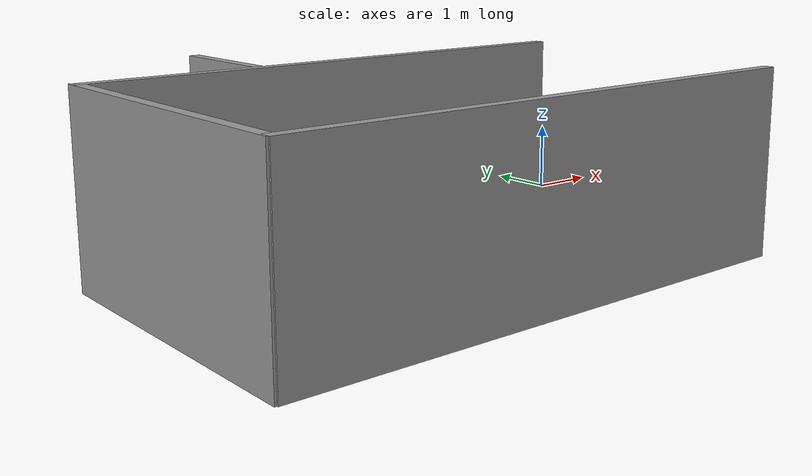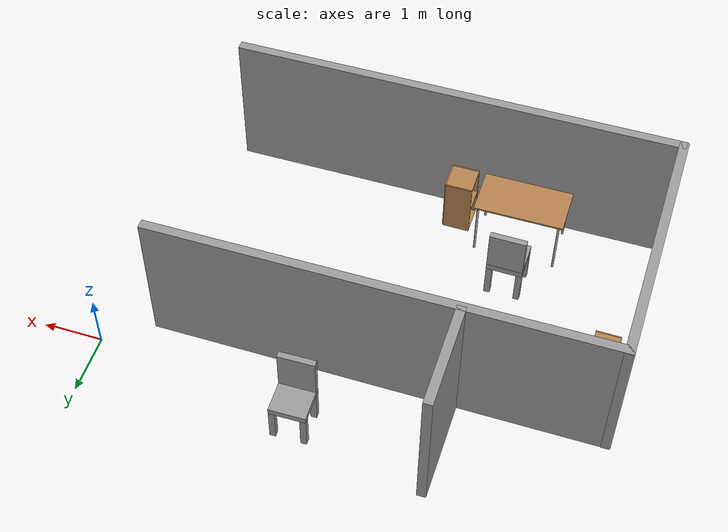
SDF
<sdf version="1.7">
 <world name="default">
  <model name="table">
   <static>1</static>
   <link name="link">
    <collision name="surface">
     <pose>0 0 1 0 -0 0</pose>
     <geometry><box><size>1.5 0.8 0.03</size></box></geometry>
     <surface><friction><ode><mu>0.6</mu><mu2>0.6</mu2></ode></friction></surface>
    </collision>
    <visual name="visual1">
     <pose>0 0 1 0 -0 0</pose>
     <geometry><box><size>1.5 0.8 0.03</size></box></geometry>
     <material>
      <script><uri>file://media/materials/scripts/gazebo.material</uri><name>Gazebo/Wood</name></script>
     </material>
    </visual>
    <collision name="front_left_leg">
     <pose>0.68 0.38 0.5 0 -0 0</pose>
     <geometry><cylinder><radius>0.02</radius><length>1</length></cylinder></geometry>
    </collision>
    <visual name="front_left_leg">
     <pose>0.68 0.38 0.5 0 -0 0</pose>
     <geometry><cylinder><radius>0.02</radius><length>1</length></cylinder></geometry>
     <material>
      <script><uri>file://media/materials/scripts/gazebo.material</uri><name>Gazebo/Grey</name></script>
     </material>
    </visual>
    <collision name="front_right_leg">
     <pose>0.68 -0.38 0.5 0 -0 0</pose>
     <geometry><cylinder><radius>0.02</radius><length>1</length></cylinder></geometry>
    </collision>
    <visual name="front_right_leg">
     <pose>0.68 -0.38 0.5 0 -0 0</pose>
     <geometry><cylinder><radius>0.02</radius><length>1</length></cylinder></geometry>
     <material>
      <script><uri>file://media/materials/scripts/gazebo.material</uri><name>Gazebo/Grey</name></script>
     </material>
    </visual>
    <collision name="back_right_leg">
     <pose>-0.68 -0.38 0.5 0 -0 0</pose>
     <geometry><cylinder><radius>0.02</radius><length>1</length></cylinder></geometry>
    </collision>
    <visual name="back_right_leg">
     <pose>-0.68 -0.38 0.5 0 -0 0</pose>
     <geometry><cylinder><radius>0.02</radius><length>1</length></cylinder></geometry>
     <material>
      <script><uri>file://media/materials/scripts/gazebo.material</uri><name>Gazebo/Grey</name></script>
     </material>
    </visual>
    <collision name="back_left_leg">
     <pose>-0.68 0.38 0.5 0 -0 0</pose>
     <geometry><cylinder><radius>0.02</radius><length>1</length></cylinder></geometry>
    </collision>
    <visual name="back_left_leg">
     <pose>-0.68 0.38 0.5 0 -0 0</pose>
     <geometry><cylinder><radius>0.02</radius><length>1</length></cylinder></geometry>
     <material>
      <script><uri>file://media/materials/scripts/gazebo.material</uri><name>Gazebo/Grey</name></script>
     </material>
    </visual>
   </link>
   <pose>-5.89991 -4.14082 0 0 -0 0</pose>
  </model>
  <model name="simple_chair">
   <link name="link_0_clone">
    <inertial>
     <mass>1</mass>
     <inertia>
      <ixx>0.166667</ixx>
      <ixy>0</ixy>
      <ixz>0</ixz>
      <iyy>0.166667</iyy>
      <iyz>0</iyz>
      <izz>0.166667</izz>
     </inertia>
    </inertial>
    <pose>-0.041667 -0 0.165833 0 -0 0</pose>
    <visual name="visual">
     <geometry><box><size>0.6 0.6 0.11</size></box></geometry>
     <material>
      <lighting>1</lighting>
      <script><uri>file://media/materials/scripts/gazebo.material</uri><name>Gazebo/Grey</name></script>
      <shader type="pixel"><normal_map>__default__</normal_map></shader>
      <ambient>0.3 0.3 0.3 1</ambient>
      <diffuse>0.7 0.7 0.7 1</diffuse>
      <specular>0.01 0.01 0.01 1</specular>
      <emissive>0 0 0 1</emissive>
     </material>
    </visual>
    <collision name="collision">
     <geometry><box><size>0.6 0.6 0.1</size></box></geometry>
     <surface>
      <friction>
       <ode><mu>1</mu><mu2>1</mu2><fdir1>0 0 0</fdir1><slip1>0</slip1><slip2>0</slip2></ode>
       <torsional>
        <coefficient>1</coefficient>
        <patch_radius>0</patch_radius>
        <surface_radius>0</surface_radius>
        <use_patch_radius>1</use_patch_radius>
        <ode><slip>0</slip></ode>
       </torsional>
      </friction>
      <bounce><restitution_coefficient>0</restitution_coefficient><threshold>1e+06</threshold></bounce>
      <contact>
       <collide_without_contact>0</collide_without_contact>
       <collide_without_contact_bitmask>1</collide_without_contact_bitmask>
       <collide_bitmask>1</collide_bitmask>
       <ode>
        <soft_cfm>0</soft_cfm>
        <soft_erp>0.2</soft_erp>
        <kp>1e+13</kp>
        <kd>1</kd>
        <max_vel>0.01</max_vel>
        <min_depth>0</min_depth>
       </ode>
       <bullet>
        <split_impulse>1</split_impulse>
        <split_impulse_penetration_threshold>-0.01</split_impulse_penetration_threshold>
        <soft_cfm>0</soft_cfm>
        <soft_erp>0.2</soft_erp>
        <kp>1e+13</kp>
        <kd>1</kd>
       </bullet>
      </contact>
     </surface>
    </collision>
   </link>
   <link name="link_1_clone">
    <inertial>
     <mass>1</mass>
     <inertia>
      <ixx>0.166667</ixx>
      <ixy>0</ixy>
      <ixz>0</ixz>
      <iyy>0.166667</iyy>
      <iyz>0</iyz>
      <izz>0.166667</izz>
     </inertia>
    </inertial>
    <pose>-0.291667 0.25 -0.184167 0 -0 0</pose>
    <visual name="visual">
     <geometry><box><size>0.1 0.1 0.6</size></box></geometry>
     <material>
      <lighting>1</lighting>
      <script><uri>file://media/materials/scripts/gazebo.material</uri><name>Gazebo/Grey</name></script>
      <shader type="pixel"><normal_map>__default__</normal_map></shader>
      <ambient>0.3 0.3 0.3 1</ambient>
      <diffuse>0.7 0.7 0.7 1</diffuse>
      <specular>0.01 0.01 0.01 1</specular>
      <emissive>0 0 0 1</emissive>
     </material>
    </visual>
    <collision name="collision">
     <geometry><box><size>0.1 0.1 0.6</size></box></geometry>
     <surface>
      <friction>
       <ode><mu>1</mu><mu2>1</mu2><fdir1>0 0 0</fdir1><slip1>0</slip1><slip2>0</slip2></ode>
       <torsional>
        <coefficient>1</coefficient>
        <patch_radius>0</patch_radius>
        <surface_radius>0</surface_radius>
        <use_patch_radius>1</use_patch_radius>
        <ode><slip>0</slip></ode>
       </torsional>
      </friction>
      <bounce><restitution_coefficient>0</restitution_coefficient><threshold>1e+06</threshold></bounce>
      <contact>
       <collide_without_contact>0</collide_without_contact>
       <collide_without_contact_bitmask>1</collide_without_contact_bitmask>
       <collide_bitmask>1</collide_bitmask>
       <ode>
        <soft_cfm>0</soft_cfm>
        <soft_erp>0.2</soft_erp>
        <kp>1e+13</kp>
        <kd>1</kd>
        <max_vel>0.01</max_vel>
        <min_depth>0</min_depth>
       </ode>
       <bullet>
        <split_impulse>1</split_impulse>
        <split_impulse_penetration_threshold>-0.01</split_impulse_penetration_threshold>
        <soft_cfm>0</soft_cfm>
        <soft_erp>0.2</soft_erp>
        <kp>1e+13</kp>
        <kd>1</kd>
       </bullet>
      </contact>
     </surface>
    </collision>
   </link>
   <link name="link_1_clone_0">
    <inertial>
     <mass>1</mass>
     <inertia>
      <ixx>0.166667</ixx>
      <ixy>0</ixy>
      <ixz>0</ixz>
      <iyy>0.166667</iyy>
      <iyz>0</iyz>
      <izz>0.166667</izz>
     </inertia>
    </inertial>
    <pose>0.208333 0.25 -0.184167 0 -0 0</pose>
    <visual name="visual">
     <geometry><box><size>0.1 0.1 0.6</size></box></geometry>
     <material>
      <lighting>1</lighting>
      <script><uri>file://media/materials/scripts/gazebo.material</uri><name>Gazebo/Grey</name></script>
      <shader type="pixel"><normal_map>__default__</normal_map></shader>
      <ambient>0.3 0.3 0.3 1</ambient>
      <diffuse>0.7 0.7 0.7 1</diffuse>
      <specular>0.01 0.01 0.01 1</specular>
      <emissive>0 0 0 1</emissive>
     </material>
    </visual>
    <collision name="collision">
     <geometry><box><size>0.1 0.1 0.6</size></box></geometry>
     <surface>
      <friction>
       <ode><mu>1</mu><mu2>1</mu2><fdir1>0 0 0</fdir1><slip1>0</slip1><slip2>0</slip2></ode>
       <torsional>
        <coefficient>1</coefficient>
        <patch_radius>0</patch_radius>
        <surface_radius>0</surface_radius>
        <use_patch_radius>1</use_patch_radius>
        <ode><slip>0</slip></ode>
       </torsional>
      </friction>
      <bounce><restitution_coefficient>0</restitution_coefficient><threshold>1e+06</threshold></bounce>
      <contact>
       <collide_without_contact>0</collide_without_contact>
       <collide_without_contact_bitmask>1</collide_without_contact_bitmask>
       <collide_bitmask>1</collide_bitmask>
       <ode>
        <soft_cfm>0</soft_cfm>
        <soft_erp>0.2</soft_erp>
        <kp>1e+13</kp>
        <kd>1</kd>
        <max_vel>0.01</max_vel>
        <min_depth>0</min_depth>
       </ode>
       <bullet>
        <split_impulse>1</split_impulse>
        <split_impulse_penetration_threshold>-0.01</split_impulse_penetration_threshold>
        <soft_cfm>0</soft_cfm>
        <soft_erp>0.2</soft_erp>
        <kp>1e+13</kp>
        <kd>1</kd>
       </bullet>
      </contact>
     </surface>
    </collision>
   </link>
   <link name="link_1_clone_1">
    <inertial>
     <mass>1</mass>
     <inertia>
      <ixx>0.166667</ixx>
      <ixy>0</ixy>
      <ixz>0</ixz>
      <iyy>0.166667</iyy>
      <iyz>0</iyz>
      <izz>0.166667</izz>
     </inertia>
    </inertial>
    <pose>0.208333 -0.25 -0.184167 0 -0 0</pose>
    <visual name="visual">
     <geometry><box><size>0.1 0.1 0.6</size></box></geometry>
     <material>
      <lighting>1</lighting>
      <script><uri>file://media/materials/scripts/gazebo.material</uri><name>Gazebo/Grey</name></script>
      <shader type="pixel"><normal_map>__default__</normal_map></shader>
      <ambient>0.3 0.3 0.3 1</ambient>
      <diffuse>0.7 0.7 0.7 1</diffuse>
      <specular>0.01 0.01 0.01 1</specular>
      <emissive>0 0 0 1</emissive>
     </material>
    </visual>
    <collision name="collision">
     <geometry><box><size>0.1 0.1 0.6</size></box></geometry>
     <surface>
      <friction>
       <ode><mu>1</mu><mu2>1</mu2><fdir1>0 0 0</fdir1><slip1>0</slip1><slip2>0</slip2></ode>
       <torsional>
        <coefficient>1</coefficient>
        <patch_radius>0</patch_radius>
        <surface_radius>0</surface_radius>
        <use_patch_radius>1</use_patch_radius>
        <ode><slip>0</slip></ode>
       </torsional>
      </friction>
      <bounce><restitution_coefficient>0</restitution_coefficient><threshold>1e+06</threshold></bounce>
      <contact>
       <collide_without_contact>0</collide_without_contact>
       <collide_without_contact_bitmask>1</collide_without_contact_bitmask>
       <collide_bitmask>1</collide_bitmask>
       <ode>
        <soft_cfm>0</soft_cfm>
        <soft_erp>0.2</soft_erp>
        <kp>1e+13</kp>
        <kd>1</kd>
        <max_vel>0.01</max_vel>
        <min_depth>0</min_depth>
       </ode>
       <bullet>
        <split_impulse>1</split_impulse>
        <split_impulse_penetration_threshold>-0.01</split_impulse_penetration_threshold>
        <soft_cfm>0</soft_cfm>
        <soft_erp>0.2</soft_erp>
        <kp>1e+13</kp>
        <kd>1</kd>
       </bullet>
      </contact>
     </surface>
    </collision>
   </link>
   <link name="link_1_clone_clone">
    <inertial>
     <mass>1</mass>
     <inertia>
      <ixx>0.166667</ixx>
      <ixy>0</ixy>
      <ixz>0</ixz>
      <iyy>0.166667</iyy>
      <iyz>0</iyz>
      <izz>0.166667</izz>
     </inertia>
    </inertial>
    <pose>-0.291667 -0.25 -0.184167 0 -0 0</pose>
    <visual name="visual">
     <geometry><box><size>0.1 0.1 0.6</size></box></geometry>
     <material>
      <lighting>1</lighting>
      <script><uri>file://media/materials/scripts/gazebo.material</uri><name>Gazebo/Grey</name></script>
      <shader type="pixel"><normal_map>__default__</normal_map></shader>
      <ambient>0.3 0.3 0.3 1</ambient>
      <diffuse>0.7 0.7 0.7 1</diffuse>
      <specular>0.01 0.01 0.01 1</specular>
      <emissive>0 0 0 1</emissive>
     </material>
    </visual>
    <collision name="collision">
     <geometry><box><size>0.1 0.1 0.6</size></box></geometry>
     <surface>
      <friction>
       <ode><mu>1</mu><mu2>1</mu2><fdir1>0 0 0</fdir1><slip1>0</slip1><slip2>0</slip2></ode>
       <torsional>
        <coefficient>1</coefficient>
        <patch_radius>0</patch_radius>
        <surface_radius>0</surface_radius>
        <use_patch_radius>1</use_patch_radius>
        <ode><slip>0</slip></ode>
       </torsional>
      </friction>
      <bounce><restitution_coefficient>0</restitution_coefficient><threshold>1e+06</threshold></bounce>
      <contact>
       <collide_without_contact>0</collide_without_contact>
       <collide_without_contact_bitmask>1</collide_without_contact_bitmask>
       <collide_bitmask>1</collide_bitmask>
       <ode>
        <soft_cfm>0</soft_cfm>
        <soft_erp>0.2</soft_erp>
        <kp>1e+13</kp>
        <kd>1</kd>
        <max_vel>0.01</max_vel>
        <min_depth>0</min_depth>
       </ode>
       <bullet>
        <split_impulse>1</split_impulse>
        <split_impulse_penetration_threshold>-0.01</split_impulse_penetration_threshold>
        <soft_cfm>0</soft_cfm>
        <soft_erp>0.2</soft_erp>
        <kp>1e+13</kp>
        <kd>1</kd>
       </bullet>
      </contact>
     </surface>
    </collision>
   </link>
   <link name="link_2_clone">
    <inertial>
     <mass>1</mass>
     <inertia>
      <ixx>0.166667</ixx>
      <ixy>0</ixy>
      <ixz>0</ixz>
      <iyy>0.166667</iyy>
      <iyz>0</iyz>
      <izz>0.166667</izz>
     </inertia>
    </inertial>
    <pose>0.208333 -0 0.570833 0 -0 0</pose>
    <visual name="visual">
     <geometry><box><size>0.1 0.6 0.7</size></box></geometry>
     <material>
      <lighting>1</lighting>
      <script><uri>file://media/materials/scripts/gazebo.material</uri><name>Gazebo/Grey</name></script>
      <shader type="pixel"><normal_map>__default__</normal_map></shader>
      <ambient>0.3 0.3 0.3 1</ambient>
      <diffuse>0.7 0.7 0.7 1</diffuse>
      <specular>0.01 0.01 0.01 1</specular>
      <emissive>0 0 0 1</emissive>
     </material>
    </visual>
    <collision name="collision">
     <geometry><box><size>0.1 0.6 0.7</size></box></geometry>
     <surface>
      <friction>
       <ode><mu>1</mu><mu2>1</mu2><fdir1>0 0 0</fdir1><slip1>0</slip1><slip2>0</slip2></ode>
       <torsional>
        <coefficient>1</coefficient>
        <patch_radius>0</patch_radius>
        <surface_radius>0</surface_radius>
        <use_patch_radius>1</use_patch_radius>
        <ode><slip>0</slip></ode>
       </torsional>
      </friction>
      <bounce><restitution_coefficient>0</restitution_coefficient><threshold>1e+06</threshold></bounce>
      <contact>
       <collide_without_contact>0</collide_without_contact>
       <collide_without_contact_bitmask>1</collide_without_contact_bitmask>
       <collide_bitmask>1</collide_bitmask>
       <ode>
        <soft_cfm>0</soft_cfm>
        <soft_erp>0.2</soft_erp>
        <kp>1e+13</kp>
        <kd>1</kd>
        <max_vel>0.01</max_vel>
        <min_depth>0</min_depth>
       </ode>
       <bullet>
        <split_impulse>1</split_impulse>
        <split_impulse_penetration_threshold>-0.01</split_impulse_penetration_threshold>
        <soft_cfm>0</soft_cfm>
        <soft_erp>0.2</soft_erp>
        <kp>1e+13</kp>
        <kd>1</kd>
       </bullet>
      </contact>
     </surface>
    </collision>
   </link>
   <joint name="link_0_clone_JOINT_0" type="fixed">
    <parent>link_0_clone</parent>
    <child>link_1_clone_clone</child>
    <physics>
     <ode><limit><cfm>0</cfm><erp>0.2</erp></limit><suspension><cfm>0</cfm><erp>0.2</erp></suspension></ode>
    </physics>
   </joint>
   <joint name="link_0_clone_JOINT_1" type="fixed">
    <parent>link_0_clone</parent>
    <child>link_1_clone</child>
    <physics>
     <ode><limit><cfm>0</cfm><erp>0.2</erp></limit><suspension><cfm>0</cfm><erp>0.2</erp></suspension></ode>
    </physics>
   </joint>
   <joint name="link_0_clone_JOINT_2" type="fixed">
    <parent>link_0_clone</parent>
    <child>link_1_clone_1</child>
    <physics>
     <ode><limit><cfm>0</cfm><erp>0.2</erp></limit><suspension><cfm>0</cfm><erp>0.2</erp></suspension></ode>
    </physics>
   </joint>
   <joint name="link_0_clone_JOINT_3" type="fixed">
    <parent>link_0_clone</parent>
    <child>link_2_clone</child>
    <physics>
     <ode><limit><cfm>0</cfm><erp>0.2</erp></limit><suspension><cfm>0</cfm><erp>0.2</erp></suspension></ode>
    </physics>
   </joint>
   <joint name="link_0_clone_JOINT_4" type="fixed">
    <parent>link_0_clone</parent>
    <child>link_1_clone_0</child>
    <physics>
     <ode><limit><cfm>0</cfm><erp>0.2</erp></limit><suspension><cfm>0</cfm><erp>0.2</erp></suspension></ode>
    </physics>
   </joint>
   <static>0</static>
   <pose>-5.9122 -3.15046 0.484166 -3e-06 -0 1.55944</pose>
  </model>
  <model name="cabinet">
   <static>1</static>
   <link name="cabinet_bottom_plate">
    <inertial>
     <pose>0 0 -1 0 -0 0</pose>
     <inertia><ixx>2.05</ixx><ixy>0</ixy><ixz>0</ixz><iyy>2.05</iyy><iyz>0</iyz><izz>2.05</izz></inertia>
     <mass>25</mass>
    </inertial>
    <collision name="cabinet_bottom_plate_geom">
     <pose>0 0 0.01 0 -0 0</pose>
     <geometry><box><size>0.45 0.45 0.02</size></box></geometry>
    </collision>
    <visual name="cabinet_bottom_plate_geom_visual">
     <pose>0 0 0.01 0 -0 0</pose>
     <geometry><box><size>0.45 0.45 0.02</size></box></geometry>
     <material>
      <script><uri>file://media/materials/scripts/gazebo.material</uri><name>Gazebo/Wood</name></script>
     </material>
    </visual>
    <collision name="cabinet_bottom_plate_geom_cabinet_back_plate">
     <pose>0.235 0 0.51 0 -0 0</pose>
     <geometry><box><size>0.02 0.45 1.02</size></box></geometry>
    </collision>
    <visual name="cabinet_bottom_plate_geom_cabinet_back_plate_visual">
     <pose>0.235 0 0.51 0 -0 0</pose>
     <geometry><box><size>0.02 0.45 1.02</size></box></geometry>
     <material>
      <script><uri>file://media/materials/scripts/gazebo.material</uri><name>Gazebo/Wood</name></script>
     </material>
    </visual>
    <collision name="cabinet_bottom_plate_geom_cabinet_left_plate">
     <pose>0 0.235 0.51 0 -0 0</pose>
     <geometry><box><size>0.45 0.02 1.02</size></box></geometry>
    </collision>
    <visual name="cabinet_bottom_plate_geom_cabinet_left_plate_visual">
     <pose>0 0.235 0.51 0 -0 0</pose>
     <geometry><box><size>0.45 0.02 1.02</size></box></geometry>
     <material>
      <script><uri>file://media/materials/scripts/gazebo.material</uri><name>Gazebo/Wood</name></script>
     </material>
    </visual>
    <collision name="cabinet_bottom_plate_geom_cabinet_middle_plate">
     <pose>0 0 0.51 0 -0 0</pose>
     <geometry><box><size>0.45 0.45 0.02</size></box></geometry>
    </collision>
    <visual name="cabinet_bottom_plate_geom_cabinet_middle_plate_visual">
     <pose>0 0 0.51 0 -0 0</pose>
     <geometry><box><size>0.45 0.45 0.02</size></box></geometry>
     <material>
      <script><uri>file://media/materials/scripts/gazebo.material</uri><name>Gazebo/Wood</name></script>
     </material>
    </visual>
    <collision name="cabinet_bottom_plate_geom_cabinet_right_plate">
     <pose>0 -0.235 0.51 0 -0 0</pose>
     <geometry><box><size>0.45 0.02 1.02</size></box></geometry>
    </collision>
    <visual name="cabinet_bottom_plate_geom_cabinet_right_plate_visual">
     <pose>0 -0.235 0.51 0 -0 0</pose>
     <geometry><box><size>0.45 0.02 1.02</size></box></geometry>
     <material>
      <script><uri>file://media/materials/scripts/gazebo.material</uri><name>Gazebo/Wood</name></script>
     </material>
    </visual>
    <collision name="cabinet_bottom_plate_geom_cabinet_top_plate">
     <pose>0 0 1.01 0 -0 0</pose>
     <geometry><box><size>0.45 0.45 0.02</size></box></geometry>
    </collision>
    <visual name="cabinet_bottom_plate_geom_cabinet_top_plate_visual">
     <pose>0 0 1.01 0 -0 0</pose>
     <geometry><box><size>0.45 0.45 0.02</size></box></geometry>
     <material>
      <script><uri>file://media/materials/scripts/gazebo.material</uri><name>Gazebo/Wood</name></script>
     </material>
    </visual>
   </link>
   <pose>-4.80458 -4.31362 0 0 -0 0</pose>
  </model>
  <model name="bookshelf_0">
   <static>1</static>
   <link name="link">
    <inertial><mass>1</mass></inertial>
    <collision name="back">
     <pose>0 0.005 0.6 0 -0 0</pose>
     <geometry><box><size>0.9 0.01 1.2</size></box></geometry>
    </collision>
    <visual name="visual1">
     <pose>0 0.005 0.6 0 -0 0</pose>
     <geometry><box><size>0.9 0.01 1.2</size></box></geometry>
     <material>
      <script><uri>file://media/materials/scripts/gazebo.material</uri><name>Gazebo/Wood</name></script>
     </material>
    </visual>
    <collision name="left_side">
     <pose>0.45 -0.195 0.6 0 -0 0</pose>
     <geometry><box><size>0.02 0.4 1.2</size></box></geometry>
    </collision>
    <visual name="visual2">
     <pose>0.45 -0.195 0.6 0 -0 0</pose>
     <geometry><box><size>0.02 0.4 1.2</size></box></geometry>
     <material>
      <script><uri>file://media/materials/scripts/gazebo.material</uri><name>Gazebo/Wood</name></script>
     </material>
    </visual>
    <collision name="right_side">
     <pose>-0.45 -0.195 0.6 0 -0 0</pose>
     <geometry><box><size>0.02 0.4 1.2</size></box></geometry>
    </collision>
    <visual name="visual3">
     <pose>-0.45 -0.195 0.6 0 -0 0</pose>
     <geometry><box><size>0.02 0.4 1.2</size></box></geometry>
     <material>
      <script><uri>file://media/materials/scripts/gazebo.material</uri><name>Gazebo/Wood</name></script>
     </material>
    </visual>
    <collision name="bottom">
     <pose>0 -0.195 0.03 0 -0 0</pose>
     <geometry><box><size>0.88 0.4 0.06</size></box></geometry>
    </collision>
    <visual name="visual4">
     <pose>0 -0.195 0.03 0 -0 0</pose>
     <geometry><box><size>0.88 0.4 0.06</size></box></geometry>
     <material>
      <script><uri>file://media/materials/scripts/gazebo.material</uri><name>Gazebo/Wood</name></script>
     </material>
    </visual>
    <collision name="top">
     <pose>0 -0.195 1.19 0 -0 0</pose>
     <geometry><box><size>0.88 0.4 0.02</size></box></geometry>
    </collision>
    <visual name="visual5">
     <pose>0 -0.195 1.19 0 -0 0</pose>
     <geometry><box><size>0.88 0.4 0.02</size></box></geometry>
     <material>
      <script><uri>file://media/materials/scripts/gazebo.material</uri><name>Gazebo/Wood</name></script>
     </material>
    </visual>
    <collision name="low_shelf">
     <pose>0 -0.195 0.43 0 -0 0</pose>
     <geometry><box><size>0.88 0.4 0.02</size></box></geometry>
    </collision>
    <visual name="visual6">
     <pose>0 -0.195 0.43 0 -0 0</pose>
     <geometry><box><size>0.88 0.4 0.02</size></box></geometry>
     <material>
      <script><uri>file://media/materials/scripts/gazebo.material</uri><name>Gazebo/Wood</name></script>
     </material>
    </visual>
    <collision name="high_shelf">
     <pose>0 -0.195 0.8 0 -0 0</pose>
     <geometry><box><size>0.88 0.4 0.02</size></box></geometry>
    </collision>
    <visual name="visual7">
     <pose>0 -0.195 0.8 0 -0 0</pose>
     <geometry><box><size>0.88 0.4 0.02</size></box></geometry>
     <material>
      <script><uri>file://media/materials/scripts/gazebo.material</uri><name>Gazebo/Wood</name></script>
     </material>
    </visual>
   </link>
   <pose>-7.9834 -1.30385 0 0 -0 1.55988</pose>
  </model>
  <model name="demo_clean">
   <link name="Wall_1">
    <pose>-8.17617 -2.66151 0 0 0 -1.58051</pose>
    <visual name="Wall_1_Visual">
     <pose>0 0 1.25 0 -0 0</pose>
     <geometry><box><size>4.27044 0.15 2.5</size></box></geometry>
     <material>
      <script><uri>file://media/materials/scripts/gazebo.material</uri><name>Gazebo/Grey</name></script>
      <ambient>1 1 1 1</ambient>
      <shader type="pixel"/>
     </material>
     <meta><layer>0</layer></meta>
    </visual>
    <collision name="Wall_1_Collision">
     <pose>0 0 1.25 0 -0 0</pose>
     <geometry><box><size>4.27044 0.15 2.5</size></box></geometry>
     <surface>
      <friction>
       <ode><mu>1</mu><mu2>1</mu2><fdir1>0 0 0</fdir1><slip1>0</slip1><slip2>0</slip2></ode>
       <torsional>
        <coefficient>1</coefficient>
        <patch_radius>0</patch_radius>
        <surface_radius>0</surface_radius>
        <use_patch_radius>1</use_patch_radius>
        <ode><slip>0</slip></ode>
       </torsional>
      </friction>
      <bounce><restitution_coefficient>0</restitution_coefficient><threshold>1e+06</threshold></bounce>
      <contact>
       <collide_without_contact>0</collide_without_contact>
       <collide_without_contact_bitmask>1</collide_without_contact_bitmask>
       <collide_bitmask>1</collide_bitmask>
       <ode>
        <soft_cfm>0</soft_cfm>
        <soft_erp>0.2</soft_erp>
        <kp>1e+13</kp>
        <kd>1</kd>
        <max_vel>0.01</max_vel>
        <min_depth>0</min_depth>
       </ode>
       <bullet>
        <split_impulse>1</split_impulse>
        <split_impulse_penetration_threshold>-0.01</split_impulse_penetration_threshold>
        <soft_cfm>0</soft_cfm>
        <soft_erp>0.2</soft_erp>
        <kp>1e+13</kp>
        <kd>1</kd>
       </bullet>
      </contact>
     </surface>
    </collision>
   </link>
   <link name="Wall_2">
    <pose>-4.49149 -4.74 0 0 -0 0</pose>
    <visual name="Wall_2_Visual">
     <pose>0 0 1.25 0 -0 0</pose>
     <geometry><box><size>7.5 0.15 2.5</size></box></geometry>
     <material>
      <script><uri>file://media/materials/scripts/gazebo.material</uri><name>Gazebo/Grey</name></script>
      <ambient>1 1 1 1</ambient>
      <shader type="pixel"/>
     </material>
     <meta><layer>0</layer></meta>
    </visual>
    <collision name="Wall_2_Collision">
     <pose>0 0 1.25 0 -0 0</pose>
     <geometry><box><size>7.5 0.15 2.5</size></box></geometry>
     <surface>
      <friction>
       <ode><mu>1</mu><mu2>1</mu2><fdir1>0 0 0</fdir1><slip1>0</slip1><slip2>0</slip2></ode>
       <torsional>
        <coefficient>1</coefficient>
        <patch_radius>0</patch_radius>
        <surface_radius>0</surface_radius>
        <use_patch_radius>1</use_patch_radius>
        <ode><slip>0</slip></ode>
       </torsional>
      </friction>
      <bounce><restitution_coefficient>0</restitution_coefficient><threshold>1e+06</threshold></bounce>
      <contact>
       <collide_without_contact>0</collide_without_contact>
       <collide_without_contact_bitmask>1</collide_without_contact_bitmask>
       <collide_bitmask>1</collide_bitmask>
       <ode>
        <soft_cfm>0</soft_cfm>
        <soft_erp>0.2</soft_erp>
        <kp>1e+13</kp>
        <kd>1</kd>
        <max_vel>0.01</max_vel>
        <min_depth>0</min_depth>
       </ode>
       <bullet>
        <split_impulse>1</split_impulse>
        <split_impulse_penetration_threshold>-0.01</split_impulse_penetration_threshold>
        <soft_cfm>0</soft_cfm>
        <soft_erp>0.2</soft_erp>
        <kp>1e+13</kp>
        <kd>1</kd>
       </bullet>
      </contact>
     </surface>
    </collision>
   </link>
   <link name="Wall_4">
    <pose>-4.47149 -0.608824 0 0 -0 3.14159</pose>
    <visual name="Wall_4_Visual">
     <pose>0 0 1.25 0 -0 0</pose>
     <geometry><box><size>7.5 0.15 2.5</size></box></geometry>
     <material>
      <script><uri>file://media/materials/scripts/gazebo.material</uri><name>Gazebo/Grey</name></script>
      <ambient>1 1 1 1</ambient>
      <shader type="pixel"/>
     </material>
     <meta><layer>0</layer></meta>
    </visual>
    <collision name="Wall_4_Collision">
     <pose>0 0 1.25 0 -0 0</pose>
     <geometry><box><size>7.5 0.15 2.5</size></box></geometry>
     <surface>
      <friction>
       <ode><mu>1</mu><mu2>1</mu2><fdir1>0 0 0</fdir1><slip1>0</slip1><slip2>0</slip2></ode>
       <torsional>
        <coefficient>1</coefficient>
        <patch_radius>0</patch_radius>
        <surface_radius>0</surface_radius>
        <use_patch_radius>1</use_patch_radius>
        <ode><slip>0</slip></ode>
       </torsional>
      </friction>
      <bounce><restitution_coefficient>0</restitution_coefficient><threshold>1e+06</threshold></bounce>
      <contact>
       <collide_without_contact>0</collide_without_contact>
       <collide_without_contact_bitmask>1</collide_without_contact_bitmask>
       <collide_bitmask>1</collide_bitmask>
       <ode>
        <soft_cfm>0</soft_cfm>
        <soft_erp>0.2</soft_erp>
        <kp>1e+13</kp>
        <kd>1</kd>
        <max_vel>0.01</max_vel>
        <min_depth>0</min_depth>
       </ode>
       <bullet>
        <split_impulse>1</split_impulse>
        <split_impulse_penetration_threshold>-0.01</split_impulse_penetration_threshold>
        <soft_cfm>0</soft_cfm>
        <soft_erp>0.2</soft_erp>
        <kp>1e+13</kp>
        <kd>1</kd>
       </bullet>
      </contact>
     </surface>
    </collision>
   </link>
   <link name="Wall_44">
    <pose>-5.71903 0.262602 0 0 0 -1.5708</pose>
    <visual name="Wall_44_Visual">
     <pose>0 0 1.25 0 -0 0</pose>
     <geometry><box><size>1.75 0.15 2.5</size></box></geometry>
     <material>
      <script><uri>file://media/materials/scripts/gazebo.material</uri><name>Gazebo/Grey</name></script>
      <ambient>1 1 1 1</ambient>
      <shader type="pixel"/>
     </material>
     <meta><layer>0</layer></meta>
    </visual>
    <collision name="Wall_44_Collision">
     <pose>0 0 1.25 0 -0 0</pose>
     <geometry><box><size>1.75 0.15 2.5</size></box></geometry>
     <surface>
      <friction>
       <ode><mu>1</mu><mu2>1</mu2><fdir1>0 0 0</fdir1><slip1>0</slip1><slip2>0</slip2></ode>
       <torsional>
        <coefficient>1</coefficient>
        <patch_radius>0</patch_radius>
        <surface_radius>0</surface_radius>
        <use_patch_radius>1</use_patch_radius>
        <ode><slip>0</slip></ode>
       </torsional>
      </friction>
      <bounce><restitution_coefficient>0</restitution_coefficient><threshold>1e+06</threshold></bounce>
      <contact>
       <collide_without_contact>0</collide_without_contact>
       <collide_without_contact_bitmask>1</collide_without_contact_bitmask>
       <collide_bitmask>1</collide_bitmask>
       <ode>
        <soft_cfm>0</soft_cfm>
        <soft_erp>0.2</soft_erp>
        <kp>1e+13</kp>
        <kd>1</kd>
        <max_vel>0.01</max_vel>
        <min_depth>0</min_depth>
       </ode>
       <bullet>
        <split_impulse>1</split_impulse>
        <split_impulse_penetration_threshold>-0.01</split_impulse_penetration_threshold>
        <soft_cfm>0</soft_cfm>
        <soft_erp>0.2</soft_erp>
        <kp>1e+13</kp>
        <kd>1</kd>
       </bullet>
      </contact>
     </surface>
    </collision>
   </link>
   <static>1</static>
  </model>
  <model name="simple_chair_0">
   <link name="link_0_clone">
    <inertial>
     <mass>1</mass>
     <inertia>
      <ixx>0.166667</ixx>
      <ixy>0</ixy>
      <ixz>0</ixz>
      <iyy>0.166667</iyy>
      <iyz>0</iyz>
      <izz>0.166667</izz>
     </inertia>
    </inertial>
    <pose>-0.041667 -0 0.165833 0 -0 0</pose>
    <visual name="visual">
     <geometry><box><size>0.6 0.6 0.11</size></box></geometry>
     <material>
      <lighting>1</lighting>
      <script><uri>file://media/materials/scripts/gazebo.material</uri><name>Gazebo/Grey</name></script>
      <shader type="pixel"><normal_map>__default__</normal_map></shader>
      <ambient>0.3 0.3 0.3 1</ambient>
      <diffuse>0.7 0.7 0.7 1</diffuse>
      <specular>0.01 0.01 0.01 1</specular>
      <emissive>0 0 0 1</emissive>
     </material>
    </visual>
    <collision name="collision">
     <geometry><box><size>0.6 0.6 0.1</size></box></geometry>
     <surface>
      <friction>
       <ode><mu>1</mu><mu2>1</mu2><fdir1>0 0 0</fdir1><slip1>0</slip1><slip2>0</slip2></ode>
       <torsional>
        <coefficient>1</coefficient>
        <patch_radius>0</patch_radius>
        <surface_radius>0</surface_radius>
        <use_patch_radius>1</use_patch_radius>
        <ode><slip>0</slip></ode>
       </torsional>
      </friction>
      <bounce><restitution_coefficient>0</restitution_coefficient><threshold>1e+06</threshold></bounce>
      <contact>
       <collide_without_contact>0</collide_without_contact>
       <collide_without_contact_bitmask>1</collide_without_contact_bitmask>
       <collide_bitmask>1</collide_bitmask>
       <ode>
        <soft_cfm>0</soft_cfm>
        <soft_erp>0.2</soft_erp>
        <kp>1e+13</kp>
        <kd>1</kd>
        <max_vel>0.01</max_vel>
        <min_depth>0</min_depth>
       </ode>
       <bullet>
        <split_impulse>1</split_impulse>
        <split_impulse_penetration_threshold>-0.01</split_impulse_penetration_threshold>
        <soft_cfm>0</soft_cfm>
        <soft_erp>0.2</soft_erp>
        <kp>1e+13</kp>
        <kd>1</kd>
       </bullet>
      </contact>
     </surface>
    </collision>
   </link>
   <link name="link_1_clone">
    <inertial>
     <mass>1</mass>
     <inertia>
      <ixx>0.166667</ixx>
      <ixy>0</ixy>
      <ixz>0</ixz>
      <iyy>0.166667</iyy>
      <iyz>0</iyz>
      <izz>0.166667</izz>
     </inertia>
    </inertial>
    <pose>-0.291667 0.25 -0.184167 0 -0 0</pose>
    <visual name="visual">
     <geometry><box><size>0.1 0.1 0.6</size></box></geometry>
     <material>
      <lighting>1</lighting>
      <script><uri>file://media/materials/scripts/gazebo.material</uri><name>Gazebo/Grey</name></script>
      <shader type="pixel"><normal_map>__default__</normal_map></shader>
      <ambient>0.3 0.3 0.3 1</ambient>
      <diffuse>0.7 0.7 0.7 1</diffuse>
      <specular>0.01 0.01 0.01 1</specular>
      <emissive>0 0 0 1</emissive>
     </material>
    </visual>
    <collision name="collision">
     <geometry><box><size>0.1 0.1 0.6</size></box></geometry>
     <surface>
      <friction>
       <ode><mu>1</mu><mu2>1</mu2><fdir1>0 0 0</fdir1><slip1>0</slip1><slip2>0</slip2></ode>
       <torsional>
        <coefficient>1</coefficient>
        <patch_radius>0</patch_radius>
        <surface_radius>0</surface_radius>
        <use_patch_radius>1</use_patch_radius>
        <ode><slip>0</slip></ode>
       </torsional>
      </friction>
      <bounce><restitution_coefficient>0</restitution_coefficient><threshold>1e+06</threshold></bounce>
      <contact>
       <collide_without_contact>0</collide_without_contact>
       <collide_without_contact_bitmask>1</collide_without_contact_bitmask>
       <collide_bitmask>1</collide_bitmask>
       <ode>
        <soft_cfm>0</soft_cfm>
        <soft_erp>0.2</soft_erp>
        <kp>1e+13</kp>
        <kd>1</kd>
        <max_vel>0.01</max_vel>
        <min_depth>0</min_depth>
       </ode>
       <bullet>
        <split_impulse>1</split_impulse>
        <split_impulse_penetration_threshold>-0.01</split_impulse_penetration_threshold>
        <soft_cfm>0</soft_cfm>
        <soft_erp>0.2</soft_erp>
        <kp>1e+13</kp>
        <kd>1</kd>
       </bullet>
      </contact>
     </surface>
    </collision>
   </link>
   <link name="link_1_clone_0">
    <inertial>
     <mass>1</mass>
     <inertia>
      <ixx>0.166667</ixx>
      <ixy>0</ixy>
      <ixz>0</ixz>
      <iyy>0.166667</iyy>
      <iyz>0</iyz>
      <izz>0.166667</izz>
     </inertia>
    </inertial>
    <pose>0.208333 0.25 -0.184167 0 -0 0</pose>
    <visual name="visual">
     <geometry><box><size>0.1 0.1 0.6</size></box></geometry>
     <material>
      <lighting>1</lighting>
      <script><uri>file://media/materials/scripts/gazebo.material</uri><name>Gazebo/Grey</name></script>
      <shader type="pixel"><normal_map>__default__</normal_map></shader>
      <ambient>0.3 0.3 0.3 1</ambient>
      <diffuse>0.7 0.7 0.7 1</diffuse>
      <specular>0.01 0.01 0.01 1</specular>
      <emissive>0 0 0 1</emissive>
     </material>
    </visual>
    <collision name="collision">
     <geometry><box><size>0.1 0.1 0.6</size></box></geometry>
     <surface>
      <friction>
       <ode><mu>1</mu><mu2>1</mu2><fdir1>0 0 0</fdir1><slip1>0</slip1><slip2>0</slip2></ode>
       <torsional>
        <coefficient>1</coefficient>
        <patch_radius>0</patch_radius>
        <surface_radius>0</surface_radius>
        <use_patch_radius>1</use_patch_radius>
        <ode><slip>0</slip></ode>
       </torsional>
      </friction>
      <bounce><restitution_coefficient>0</restitution_coefficient><threshold>1e+06</threshold></bounce>
      <contact>
       <collide_without_contact>0</collide_without_contact>
       <collide_without_contact_bitmask>1</collide_without_contact_bitmask>
       <collide_bitmask>1</collide_bitmask>
       <ode>
        <soft_cfm>0</soft_cfm>
        <soft_erp>0.2</soft_erp>
        <kp>1e+13</kp>
        <kd>1</kd>
        <max_vel>0.01</max_vel>
        <min_depth>0</min_depth>
       </ode>
       <bullet>
        <split_impulse>1</split_impulse>
        <split_impulse_penetration_threshold>-0.01</split_impulse_penetration_threshold>
        <soft_cfm>0</soft_cfm>
        <soft_erp>0.2</soft_erp>
        <kp>1e+13</kp>
        <kd>1</kd>
       </bullet>
      </contact>
     </surface>
    </collision>
   </link>
   <link name="link_1_clone_1">
    <inertial>
     <mass>1</mass>
     <inertia>
      <ixx>0.166667</ixx>
      <ixy>0</ixy>
      <ixz>0</ixz>
      <iyy>0.166667</iyy>
      <iyz>0</iyz>
      <izz>0.166667</izz>
     </inertia>
    </inertial>
    <pose>0.208333 -0.25 -0.184167 0 -0 0</pose>
    <visual name="visual">
     <geometry><box><size>0.1 0.1 0.6</size></box></geometry>
     <material>
      <lighting>1</lighting>
      <script><uri>file://media/materials/scripts/gazebo.material</uri><name>Gazebo/Grey</name></script>
      <shader type="pixel"><normal_map>__default__</normal_map></shader>
      <ambient>0.3 0.3 0.3 1</ambient>
      <diffuse>0.7 0.7 0.7 1</diffuse>
      <specular>0.01 0.01 0.01 1</specular>
      <emissive>0 0 0 1</emissive>
     </material>
    </visual>
    <collision name="collision">
     <geometry><box><size>0.1 0.1 0.6</size></box></geometry>
     <surface>
      <friction>
       <ode><mu>1</mu><mu2>1</mu2><fdir1>0 0 0</fdir1><slip1>0</slip1><slip2>0</slip2></ode>
       <torsional>
        <coefficient>1</coefficient>
        <patch_radius>0</patch_radius>
        <surface_radius>0</surface_radius>
        <use_patch_radius>1</use_patch_radius>
        <ode><slip>0</slip></ode>
       </torsional>
      </friction>
      <bounce><restitution_coefficient>0</restitution_coefficient><threshold>1e+06</threshold></bounce>
      <contact>
       <collide_without_contact>0</collide_without_contact>
       <collide_without_contact_bitmask>1</collide_without_contact_bitmask>
       <collide_bitmask>1</collide_bitmask>
       <ode>
        <soft_cfm>0</soft_cfm>
        <soft_erp>0.2</soft_erp>
        <kp>1e+13</kp>
        <kd>1</kd>
        <max_vel>0.01</max_vel>
        <min_depth>0</min_depth>
       </ode>
       <bullet>
        <split_impulse>1</split_impulse>
        <split_impulse_penetration_threshold>-0.01</split_impulse_penetration_threshold>
        <soft_cfm>0</soft_cfm>
        <soft_erp>0.2</soft_erp>
        <kp>1e+13</kp>
        <kd>1</kd>
       </bullet>
      </contact>
     </surface>
    </collision>
   </link>
   <link name="link_1_clone_clone">
    <inertial>
     <mass>1</mass>
     <inertia>
      <ixx>0.166667</ixx>
      <ixy>0</ixy>
      <ixz>0</ixz>
      <iyy>0.166667</iyy>
      <iyz>0</iyz>
      <izz>0.166667</izz>
     </inertia>
    </inertial>
    <pose>-0.291667 -0.25 -0.184167 0 -0 0</pose>
    <visual name="visual">
     <geometry><box><size>0.1 0.1 0.6</size></box></geometry>
     <material>
      <lighting>1</lighting>
      <script><uri>file://media/materials/scripts/gazebo.material</uri><name>Gazebo/Grey</name></script>
      <shader type="pixel"><normal_map>__default__</normal_map></shader>
      <ambient>0.3 0.3 0.3 1</ambient>
      <diffuse>0.7 0.7 0.7 1</diffuse>
      <specular>0.01 0.01 0.01 1</specular>
      <emissive>0 0 0 1</emissive>
     </material>
    </visual>
    <collision name="collision">
     <geometry><box><size>0.1 0.1 0.6</size></box></geometry>
     <surface>
      <friction>
       <ode><mu>1</mu><mu2>1</mu2><fdir1>0 0 0</fdir1><slip1>0</slip1><slip2>0</slip2></ode>
       <torsional>
        <coefficient>1</coefficient>
        <patch_radius>0</patch_radius>
        <surface_radius>0</surface_radius>
        <use_patch_radius>1</use_patch_radius>
        <ode><slip>0</slip></ode>
       </torsional>
      </friction>
      <bounce><restitution_coefficient>0</restitution_coefficient><threshold>1e+06</threshold></bounce>
      <contact>
       <collide_without_contact>0</collide_without_contact>
       <collide_without_contact_bitmask>1</collide_without_contact_bitmask>
       <collide_bitmask>1</collide_bitmask>
       <ode>
        <soft_cfm>0</soft_cfm>
        <soft_erp>0.2</soft_erp>
        <kp>1e+13</kp>
        <kd>1</kd>
        <max_vel>0.01</max_vel>
        <min_depth>0</min_depth>
       </ode>
       <bullet>
        <split_impulse>1</split_impulse>
        <split_impulse_penetration_threshold>-0.01</split_impulse_penetration_threshold>
        <soft_cfm>0</soft_cfm>
        <soft_erp>0.2</soft_erp>
        <kp>1e+13</kp>
        <kd>1</kd>
       </bullet>
      </contact>
     </surface>
    </collision>
   </link>
   <link name="link_2_clone">
    <inertial>
     <mass>1</mass>
     <inertia>
      <ixx>0.166667</ixx>
      <ixy>0</ixy>
      <ixz>0</ixz>
      <iyy>0.166667</iyy>
      <iyz>0</iyz>
      <izz>0.166667</izz>
     </inertia>
    </inertial>
    <pose>0.208333 -0 0.570833 0 -0 0</pose>
    <visual name="visual">
     <geometry><box><size>0.1 0.6 0.7</size></box></geometry>
     <material>
      <lighting>1</lighting>
      <script><uri>file://media/materials/scripts/gazebo.material</uri><name>Gazebo/Grey</name></script>
      <shader type="pixel"><normal_map>__default__</normal_map></shader>
      <ambient>0.3 0.3 0.3 1</ambient>
      <diffuse>0.7 0.7 0.7 1</diffuse>
      <specular>0.01 0.01 0.01 1</specular>
      <emissive>0 0 0 1</emissive>
     </material>
    </visual>
    <collision name="collision">
     <geometry><box><size>0.1 0.6 0.7</size></box></geometry>
     <surface>
      <friction>
       <ode><mu>1</mu><mu2>1</mu2><fdir1>0 0 0</fdir1><slip1>0</slip1><slip2>0</slip2></ode>
       <torsional>
        <coefficient>1</coefficient>
        <patch_radius>0</patch_radius>
        <surface_radius>0</surface_radius>
        <use_patch_radius>1</use_patch_radius>
        <ode><slip>0</slip></ode>
       </torsional>
      </friction>
      <bounce><restitution_coefficient>0</restitution_coefficient><threshold>1e+06</threshold></bounce>
      <contact>
       <collide_without_contact>0</collide_without_contact>
       <collide_without_contact_bitmask>1</collide_without_contact_bitmask>
       <collide_bitmask>1</collide_bitmask>
       <ode>
        <soft_cfm>0</soft_cfm>
        <soft_erp>0.2</soft_erp>
        <kp>1e+13</kp>
        <kd>1</kd>
        <max_vel>0.01</max_vel>
        <min_depth>0</min_depth>
       </ode>
       <bullet>
        <split_impulse>1</split_impulse>
        <split_impulse_penetration_threshold>-0.01</split_impulse_penetration_threshold>
        <soft_cfm>0</soft_cfm>
        <soft_erp>0.2</soft_erp>
        <kp>1e+13</kp>
        <kd>1</kd>
       </bullet>
      </contact>
     </surface>
    </collision>
   </link>
   <joint name="link_0_clone_JOINT_0" type="fixed">
    <parent>link_0_clone</parent>
    <child>link_1_clone_clone</child>
    <physics>
     <ode><limit><cfm>0</cfm><erp>0.2</erp></limit><suspension><cfm>0</cfm><erp>0.2</erp></suspension></ode>
    </physics>
   </joint>
   <joint name="link_0_clone_JOINT_1" type="fixed">
    <parent>link_0_clone</parent>
    <child>link_1_clone</child>
    <physics>
     <ode><limit><cfm>0</cfm><erp>0.2</erp></limit><suspension><cfm>0</cfm><erp>0.2</erp></suspension></ode>
    </physics>
   </joint>
   <joint name="link_0_clone_JOINT_2" type="fixed">
    <parent>link_0_clone</parent>
    <child>link_1_clone_1</child>
    <physics>
     <ode><limit><cfm>0</cfm><erp>0.2</erp></limit><suspension><cfm>0</cfm><erp>0.2</erp></suspension></ode>
    </physics>
   </joint>
   <joint name="link_0_clone_JOINT_3" type="fixed">
    <parent>link_0_clone</parent>
    <child>link_2_clone</child>
    <physics>
     <ode><limit><cfm>0</cfm><erp>0.2</erp></limit><suspension><cfm>0</cfm><erp>0.2</erp></suspension></ode>
    </physics>
   </joint>
   <joint name="link_0_clone_JOINT_4" type="fixed">
    <parent>link_0_clone</parent>
    <child>link_1_clone_0</child>
    <physics>
     <ode><limit><cfm>0</cfm><erp>0.2</erp></limit><suspension><cfm>0</cfm><erp>0.2</erp></suspension></ode>
    </physics>
   </joint>
   <static>0</static>
   <pose>-3.49675 0.482589 0.484167 0 -0 -1.55239</pose>
  </model>
  <model name="table_clone">
   <static>1</static>
   <link name="link">
    <collision name="surface">
     <pose>0 0 1 0 -0 0</pose>
     <geometry><box><size>1.5 0.8 0.03</size></box></geometry>
     <surface><friction><ode><mu>0.6</mu><mu2>0.6</mu2></ode></friction></surface>
    </collision>
    <visual name="visual1">
     <pose>0 0 1 0 -0 0</pose>
     <geometry><box><size>1.5 0.8 0.03</size></box></geometry>
     <material>
      <script><uri>file://media/materials/scripts/gazebo.material</uri><name>Gazebo/Wood</name></script>
     </material>
    </visual>
    <collision name="front_left_leg">
     <pose>0.68 0.38 0.5 0 -0 0</pose>
     <geometry><cylinder><radius>0.02</radius><length>1</length></cylinder></geometry>
    </collision>
    <visual name="front_left_leg">
     <pose>0.68 0.38 0.5 0 -0 0</pose>
     <geometry><cylinder><radius>0.02</radius><length>1</length></cylinder></geometry>
     <material>
      <script><uri>file://media/materials/scripts/gazebo.material</uri><name>Gazebo/Grey</name></script>
     </material>
    </visual>
    <collision name="front_right_leg">
     <pose>0.68 -0.38 0.5 0 -0 0</pose>
     <geometry><cylinder><radius>0.02</radius><length>1</length></cylinder></geometry>
    </collision>
    <visual name="front_right_leg">
     <pose>0.68 -0.38 0.5 0 -0 0</pose>
     <geometry><cylinder><radius>0.02</radius><length>1</length></cylinder></geometry>
     <material>
      <script><uri>file://media/materials/scripts/gazebo.material</uri><name>Gazebo/Grey</name></script>
     </material>
    </visual>
    <collision name="back_right_leg">
     <pose>-0.68 -0.38 0.5 0 -0 0</pose>
     <geometry><cylinder><radius>0.02</radius><length>1</length></cylinder></geometry>
    </collision>
    <visual name="back_right_leg">
     <pose>-0.68 -0.38 0.5 0 -0 0</pose>
     <geometry><cylinder><radius>0.02</radius><length>1</length></cylinder></geometry>
     <material>
      <script><uri>file://media/materials/scripts/gazebo.material</uri><name>Gazebo/Grey</name></script>
     </material>
    </visual>
    <collision name="back_left_leg">
     <pose>-0.68 0.38 0.5 0 -0 0</pose>
     <geometry><cylinder><radius>0.02</radius><length>1</length></cylinder></geometry>
    </collision>
    <visual name="back_left_leg">
     <pose>-0.68 0.38 0.5 0 -0 0</pose>
     <geometry><cylinder><radius>0.02</radius><length>1</length></cylinder></geometry>
     <material>
      <script><uri>file://media/materials/scripts/gazebo.material</uri><name>Gazebo/Grey</name></script>
     </material>
    </visual>
   </link>
   <pose>-3.87699 -1.18898 0 0 -0 0</pose>
  </model>
 </world>
</sdf>
